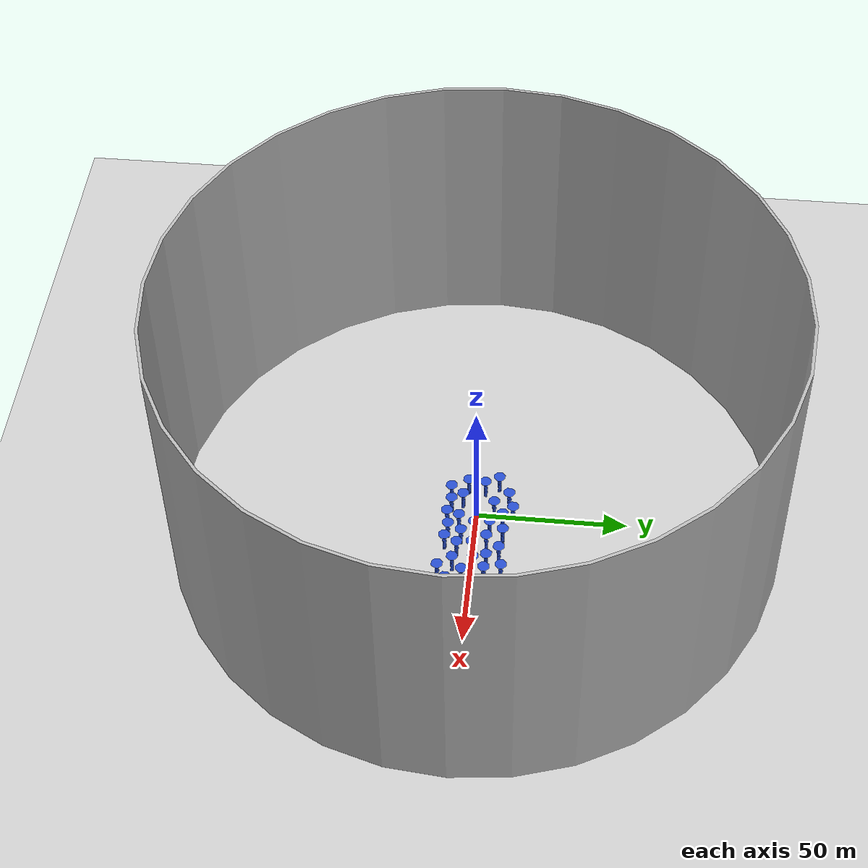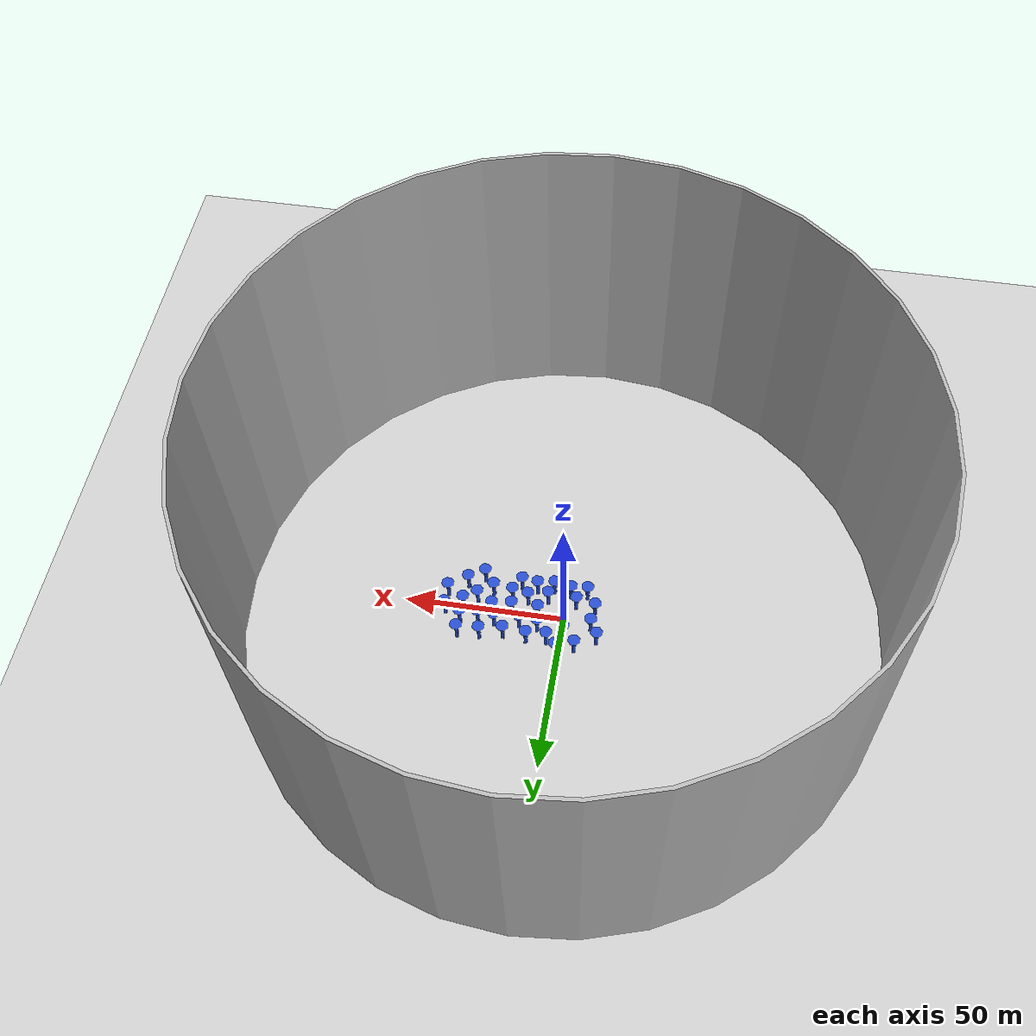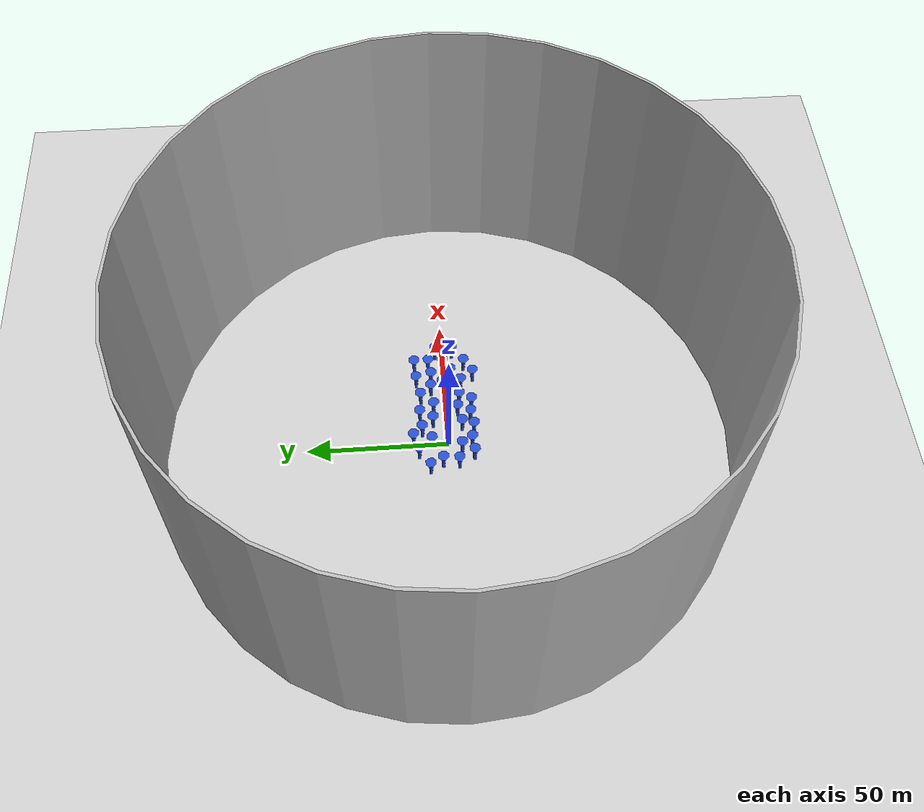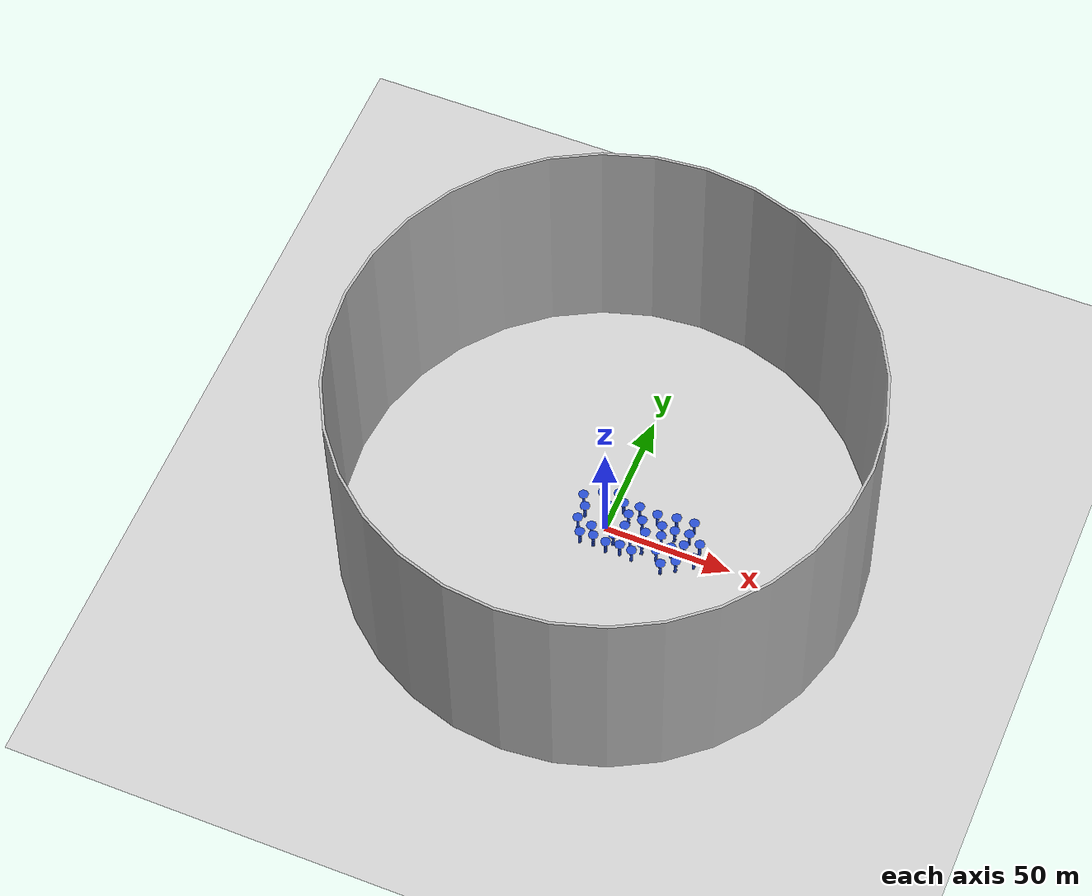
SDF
<sdf version="1.7">
 <world name="default">
  <light name="sun" type="directional">
   <cast_shadows>0</cast_shadows>
   <pose>0 0 10 0 -0 0</pose>
   <diffuse>0.8 0.8 0.8 1</diffuse>
   <specular>0.2 0.2 0.2 1</specular>
   <attenuation>
    <range>500</range>
    <constant>0.9</constant>
    <linear>0.01</linear>
    <quadratic>0.001</quadratic>
   </attenuation>
   <direction>-0.5 0.1 -0.9</direction>
   <spot><inner_angle>0</inner_angle><outer_angle>0</outer_angle><falloff>0</falloff></spot>
  </light>
  <model name="ground_plane">
   <static>1</static>
   <link name="link">
    <collision name="collision">
     <geometry><plane><normal>0 0 1</normal><size>200 200</size></plane></geometry>
     <surface>
      <contact><collide_bitmask>65535</collide_bitmask></contact>
      <friction><ode><mu>100</mu><mu2>50</mu2></ode></friction>
     </surface>
    </collision>
    <visual name="visual">
     <cast_shadows>0</cast_shadows>
     <geometry><plane><normal>0 0 1</normal><size>200 200</size></plane></geometry>
     <material>
      <script><uri>file://media/materials/scripts/gazebo.material</uri><name>Gazebo/Grey</name></script>
     </material>
    </visual>
   </link>
  </model>
  <gravity>0 0 -9.8</gravity>
  <magnetic_field>6e-06 2.3e-05 -4.2e-05</magnetic_field>
  <atmosphere type="adiabatic"/>
  <physics type="ode">
   <max_step_size>0.004</max_step_size>
   <real_time_factor>1</real_time_factor>
   <real_time_update_rate>250</real_time_update_rate>
  </physics>
  <scene><ambient>0.4 0.4 0.4 1</ambient><background>0.7 0.7 0.7 1</background><shadows>0</shadows></scene>
  <spherical_coordinates>
   <surface_model>EARTH_WGS84</surface_model>
   <latitude_deg>0</latitude_deg>
   <longitude_deg>0</longitude_deg>
   <elevation>0</elevation>
   <heading_deg>0</heading_deg>
  </spherical_coordinates>
  <model name="MyBox">
   <static>1</static>
   <link name="link">
    <visual name="visual"><geometry><mesh><uri>model://MyBox/meshes/MyBox.dae</uri></mesh></geometry></visual>
    <collision name="collision">
     <geometry><mesh><uri>model://MyBox/meshes/MyBox.dae</uri></mesh></geometry>
    </collision>
   </link>
  </model>
  <model name="MyColumn">
   <static>1</static>
   <pose>8.01961 -0.033499 0 0 -0 0</pose>
   <link name="link">
    <collision name="collision">
     <geometry><mesh><scale>1 1 1</scale><uri>model://MyColumn/meshes/Column.stl</uri></mesh></geometry>
    </collision>
    <visual name="visual">
     <geometry><mesh><scale>1 1 1</scale><uri>model://MyColumn/meshes/Column.stl</uri></mesh></geometry>
     <material>
      <script><name>Gazebo/Blue</name><uri>file://media/materials/scripts/gazebo.material</uri></script>
     </material>
    </visual>
   </link>
  </model>
  <model name="MyColumn_0">
   <static>1</static>
   <pose>4 9 0 0 -0 0</pose>
   <link name="link">
    <collision name="collision">
     <geometry><mesh><scale>1 1 1</scale><uri>model://MyColumn/meshes/Column.stl</uri></mesh></geometry>
    </collision>
    <visual name="visual">
     <geometry><mesh><scale>1 1 1</scale><uri>model://MyColumn/meshes/Column.stl</uri></mesh></geometry>
     <material>
      <script><name>Gazebo/Blue</name><uri>file://media/materials/scripts/gazebo.material</uri></script>
     </material>
    </visual>
   </link>
  </model>
  <model name="MyColumn_1">
   <static>1</static>
   <pose>-0.853209 5.86097 0 0 -0 0</pose>
   <link name="link">
    <collision name="collision">
     <geometry><mesh><scale>1 1 1</scale><uri>model://MyColumn/meshes/Column.stl</uri></mesh></geometry>
    </collision>
    <visual name="visual">
     <geometry><mesh><scale>1 1 1</scale><uri>model://MyColumn/meshes/Column.stl</uri></mesh></geometry>
     <material>
      <script><name>Gazebo/Blue</name><uri>file://media/materials/scripts/gazebo.material</uri></script>
     </material>
    </visual>
   </link>
  </model>
  <model name="MyColumn_2">
   <static>1</static>
   <pose>4.06656 -9.31077 0 0 -0 0</pose>
   <link name="link">
    <collision name="collision">
     <geometry><mesh><scale>1 1 1</scale><uri>model://MyColumn/meshes/Column.stl</uri></mesh></geometry>
    </collision>
    <visual name="visual">
     <geometry><mesh><scale>1 1 1</scale><uri>model://MyColumn/meshes/Column.stl</uri></mesh></geometry>
     <material>
      <script><name>Gazebo/Blue</name><uri>file://media/materials/scripts/gazebo.material</uri></script>
     </material>
    </visual>
   </link>
  </model>
  <model name="MyColumn_3">
   <static>1</static>
   <pose>-6.48738 -8.80628 0 0 -0 0</pose>
   <link name="link">
    <collision name="collision">
     <geometry><mesh><scale>1 1 1</scale><uri>model://MyColumn/meshes/Column.stl</uri></mesh></geometry>
    </collision>
    <visual name="visual">
     <geometry><mesh><scale>1 1 1</scale><uri>model://MyColumn/meshes/Column.stl</uri></mesh></geometry>
     <material>
      <script><name>Gazebo/Blue</name><uri>file://media/materials/scripts/gazebo.material</uri></script>
     </material>
    </visual>
   </link>
  </model>
  <model name="MyColumn_4">
   <static>1</static>
   <pose>-3.48945 -4.66783 0 0 -0 0</pose>
   <link name="link">
    <collision name="collision">
     <geometry><mesh><scale>1 1 1</scale><uri>model://MyColumn/meshes/Column.stl</uri></mesh></geometry>
    </collision>
    <visual name="visual">
     <geometry><mesh><scale>1 1 1</scale><uri>model://MyColumn/meshes/Column.stl</uri></mesh></geometry>
     <material>
      <script><name>Gazebo/Blue</name><uri>file://media/materials/scripts/gazebo.material</uri></script>
     </material>
    </visual>
   </link>
  </model>
  <model name="MyColumn_5">
   <static>1</static>
   <pose>-8.93667 2.32374 0 0 -0 0</pose>
   <link name="link">
    <collision name="collision">
     <geometry><mesh><scale>1 1 1</scale><uri>model://MyColumn/meshes/Column.stl</uri></mesh></geometry>
    </collision>
    <visual name="visual">
     <geometry><mesh><scale>1 1 1</scale><uri>model://MyColumn/meshes/Column.stl</uri></mesh></geometry>
     <material>
      <script><name>Gazebo/Blue</name><uri>file://media/materials/scripts/gazebo.material</uri></script>
     </material>
    </visual>
   </link>
  </model>
  <model name="MyColumn_6">
   <static>1</static>
   <pose>-4.89973 10.518 0 0 -0 0</pose>
   <link name="link">
    <collision name="collision">
     <geometry><mesh><scale>1 1 1</scale><uri>model://MyColumn/meshes/Column.stl</uri></mesh></geometry>
    </collision>
    <visual name="visual">
     <geometry><mesh><scale>1 1 1</scale><uri>model://MyColumn/meshes/Column.stl</uri></mesh></geometry>
     <material>
      <script><name>Gazebo/Blue</name><uri>file://media/materials/scripts/gazebo.material</uri></script>
     </material>
    </visual>
   </link>
  </model>
  <model name="MyColumn_7">
   <static>1</static>
   <pose>11.7072 -4.04622 0 0 -0 0</pose>
   <link name="link">
    <collision name="collision">
     <geometry><mesh><scale>1 1 1</scale><uri>model://MyColumn/meshes/Column.stl</uri></mesh></geometry>
    </collision>
    <visual name="visual">
     <geometry><mesh><scale>1 1 1</scale><uri>model://MyColumn/meshes/Column.stl</uri></mesh></geometry>
     <material>
      <script><name>Gazebo/Blue</name><uri>file://media/materials/scripts/gazebo.material</uri></script>
     </material>
    </visual>
   </link>
  </model>
  <model name="MyColumn_8">
   <static>1</static>
   <pose>7.47089 5.01537 0 0 -0 0</pose>
   <link name="link">
    <collision name="collision">
     <geometry><mesh><scale>1 1 1</scale><uri>model://MyColumn/meshes/Column.stl</uri></mesh></geometry>
    </collision>
    <visual name="visual">
     <geometry><mesh><scale>1 1 1</scale><uri>model://MyColumn/meshes/Column.stl</uri></mesh></geometry>
     <material>
      <script><name>Gazebo/Blue</name><uri>file://media/materials/scripts/gazebo.material</uri></script>
     </material>
    </visual>
   </link>
  </model>
  <model name="MyColumn_9">
   <static>1</static>
   <pose>5.49828 -5.27114 0 0 -0 0</pose>
   <link name="link">
    <collision name="collision">
     <geometry><mesh><scale>1 1 1</scale><uri>model://MyColumn/meshes/Column.stl</uri></mesh></geometry>
    </collision>
    <visual name="visual">
     <geometry><mesh><scale>1 1 1</scale><uri>model://MyColumn/meshes/Column.stl</uri></mesh></geometry>
     <material>
      <script><name>Gazebo/Blue</name><uri>file://media/materials/scripts/gazebo.material</uri></script>
     </material>
    </visual>
   </link>
  </model>
  <model name="MyColumn_10">
   <static>1</static>
   <pose>16.2455 -0.046176 0 0 -0 0</pose>
   <link name="link">
    <collision name="collision">
     <geometry><mesh><scale>1 1 1</scale><uri>model://MyColumn/meshes/Column.stl</uri></mesh></geometry>
    </collision>
    <visual name="visual">
     <geometry><mesh><scale>1 1 1</scale><uri>model://MyColumn/meshes/Column.stl</uri></mesh></geometry>
     <material>
      <script><name>Gazebo/Blue</name><uri>file://media/materials/scripts/gazebo.material</uri></script>
     </material>
    </visual>
   </link>
  </model>
  <model name="MyColumn_14">
   <static>1</static>
   <pose>16.7574 -5.00771 0 0 -0 0</pose>
   <link name="link">
    <collision name="collision">
     <geometry><mesh><scale>1 1 1</scale><uri>model://MyColumn/meshes/Column.stl</uri></mesh></geometry>
    </collision>
    <visual name="visual">
     <geometry><mesh><scale>1 1 1</scale><uri>model://MyColumn/meshes/Column.stl</uri></mesh></geometry>
     <material>
      <script><name>Gazebo/Blue</name><uri>file://media/materials/scripts/gazebo.material</uri></script>
     </material>
    </visual>
   </link>
  </model>
  <model name="MyColumn_21">
   <static>1</static>
   <pose>26.162 4.63926 0 0 -0 0</pose>
   <link name="link">
    <collision name="collision">
     <geometry><mesh><scale>1 1 1</scale><uri>model://MyColumn/meshes/Column.stl</uri></mesh></geometry>
    </collision>
    <visual name="visual">
     <geometry><mesh><scale>1 1 1</scale><uri>model://MyColumn/meshes/Column.stl</uri></mesh></geometry>
     <material>
      <script><name>Gazebo/Blue</name><uri>file://media/materials/scripts/gazebo.material</uri></script>
     </material>
    </visual>
   </link>
  </model>
  <model name="MyColumn_23">
   <static>1</static>
   <pose>17.5881 8.86535 0 0 -0 0</pose>
   <link name="link">
    <collision name="collision">
     <geometry><mesh><scale>1 1 1</scale><uri>model://MyColumn/meshes/Column.stl</uri></mesh></geometry>
    </collision>
    <visual name="visual">
     <geometry><mesh><scale>1 1 1</scale><uri>model://MyColumn/meshes/Column.stl</uri></mesh></geometry>
     <material>
      <script><name>Gazebo/Blue</name><uri>file://media/materials/scripts/gazebo.material</uri></script>
     </material>
    </visual>
   </link>
  </model>
  <model name="MyColumn_24">
   <static>1</static>
   <pose>10.271 9.54702 0 0 -0 0</pose>
   <link name="link">
    <collision name="collision">
     <geometry><mesh><scale>1 1 1</scale><uri>model://MyColumn/meshes/Column.stl</uri></mesh></geometry>
    </collision>
    <visual name="visual">
     <geometry><mesh><scale>1 1 1</scale><uri>model://MyColumn/meshes/Column.stl</uri></mesh></geometry>
     <material>
      <script><name>Gazebo/Blue</name><uri>file://media/materials/scripts/gazebo.material</uri></script>
     </material>
    </visual>
   </link>
  </model>
  <model name="MyColumn_25">
   <static>1</static>
   <pose>9.33895 -8.51335 0 0 -0 0</pose>
   <link name="link">
    <collision name="collision">
     <geometry><mesh><scale>1 1 1</scale><uri>model://MyColumn/meshes/Column.stl</uri></mesh></geometry>
    </collision>
    <visual name="visual">
     <geometry><mesh><scale>1 1 1</scale><uri>model://MyColumn/meshes/Column.stl</uri></mesh></geometry>
     <material>
      <script><name>Gazebo/Blue</name><uri>file://media/materials/scripts/gazebo.material</uri></script>
     </material>
    </visual>
   </link>
  </model>
  <model name="MyColumn_26">
   <static>1</static>
   <pose>14.336 -9.20322 0 0 -0 0</pose>
   <link name="link">
    <collision name="collision">
     <geometry><mesh><scale>1 1 1</scale><uri>model://MyColumn/meshes/Column.stl</uri></mesh></geometry>
    </collision>
    <visual name="visual">
     <geometry><mesh><scale>1 1 1</scale><uri>model://MyColumn/meshes/Column.stl</uri></mesh></geometry>
     <material>
      <script><name>Gazebo/Blue</name><uri>file://media/materials/scripts/gazebo.material</uri></script>
     </material>
    </visual>
   </link>
  </model>
  <model name="MyColumn_27">
   <static>1</static>
   <pose>-9.51534 -3.28078 0 0 -0 0</pose>
   <link name="link">
    <collision name="collision">
     <geometry><mesh><scale>1 1 1</scale><uri>model://MyColumn/meshes/Column.stl</uri></mesh></geometry>
    </collision>
    <visual name="visual">
     <geometry><mesh><scale>1 1 1</scale><uri>model://MyColumn/meshes/Column.stl</uri></mesh></geometry>
     <material>
      <script><name>Gazebo/Blue</name><uri>file://media/materials/scripts/gazebo.material</uri></script>
     </material>
    </visual>
   </link>
  </model>
  <model name="MyColumn_28">
   <static>1</static>
   <pose>-1.27696 -8.33726 0 0 -0 0</pose>
   <link name="link">
    <collision name="collision">
     <geometry><mesh><scale>1 1 1</scale><uri>model://MyColumn/meshes/Column.stl</uri></mesh></geometry>
    </collision>
    <visual name="visual">
     <geometry><mesh><scale>1 1 1</scale><uri>model://MyColumn/meshes/Column.stl</uri></mesh></geometry>
     <material>
      <script><name>Gazebo/Blue</name><uri>file://media/materials/scripts/gazebo.material</uri></script>
     </material>
    </visual>
   </link>
  </model>
  <model name="MyColumn_29">
   <static>1</static>
   <pose>0.795707 12.2496 0 0 -0 0</pose>
   <link name="link">
    <collision name="collision">
     <geometry><mesh><scale>1 1 1</scale><uri>model://MyColumn/meshes/Column.stl</uri></mesh></geometry>
    </collision>
    <visual name="visual">
     <geometry><mesh><scale>1 1 1</scale><uri>model://MyColumn/meshes/Column.stl</uri></mesh></geometry>
     <material>
      <script><name>Gazebo/Blue</name><uri>file://media/materials/scripts/gazebo.material</uri></script>
     </material>
    </visual>
   </link>
  </model>
  <model name="MyColumn_30">
   <static>1</static>
   <pose>-11.3335 6.81817 0 0 -0 0</pose>
   <link name="link">
    <collision name="collision">
     <geometry><mesh><scale>1 1 1</scale><uri>model://MyColumn/meshes/Column.stl</uri></mesh></geometry>
    </collision>
    <visual name="visual">
     <geometry><mesh><scale>1 1 1</scale><uri>model://MyColumn/meshes/Column.stl</uri></mesh></geometry>
     <material>
      <script><name>Gazebo/Blue</name><uri>file://media/materials/scripts/gazebo.material</uri></script>
     </material>
    </visual>
   </link>
  </model>
  <model name="MyColumn_11">
   <static>1</static>
   <pose>13.2178 4.42719 0 0 -0 0</pose>
   <link name="link">
    <collision name="collision">
     <geometry><mesh><scale>1 1 1</scale><uri>model://MyColumn/meshes/Column.stl</uri></mesh></geometry>
    </collision>
    <visual name="visual">
     <geometry><mesh><scale>1 1 1</scale><uri>model://MyColumn/meshes/Column.stl</uri></mesh></geometry>
     <material>
      <script><name>Gazebo/Blue</name><uri>file://media/materials/scripts/gazebo.material</uri></script>
     </material>
    </visual>
   </link>
  </model>
  <model name="MyColumn_12">
   <static>1</static>
   <pose>22.2996 0.835611 0 0 -0 0</pose>
   <link name="link">
    <collision name="collision">
     <geometry><mesh><scale>1 1 1</scale><uri>model://MyColumn/meshes/Column.stl</uri></mesh></geometry>
    </collision>
    <visual name="visual">
     <geometry><mesh><scale>1 1 1</scale><uri>model://MyColumn/meshes/Column.stl</uri></mesh></geometry>
     <material>
      <script><name>Gazebo/Blue</name><uri>file://media/materials/scripts/gazebo.material</uri></script>
     </material>
    </visual>
   </link>
  </model>
  <model name="MyColumn_13">
   <static>1</static>
   <pose>27.4625 -2.46039 0 0 -0 0</pose>
   <link name="link">
    <collision name="collision">
     <geometry><mesh><scale>1 1 1</scale><uri>model://MyColumn/meshes/Column.stl</uri></mesh></geometry>
    </collision>
    <visual name="visual">
     <geometry><mesh><scale>1 1 1</scale><uri>model://MyColumn/meshes/Column.stl</uri></mesh></geometry>
     <material>
      <script><name>Gazebo/Blue</name><uri>file://media/materials/scripts/gazebo.material</uri></script>
     </material>
    </visual>
   </link>
  </model>
  <model name="MyColumn_15">
   <static>1</static>
   <pose>22.8771 -5.86718 0 0 -0 0</pose>
   <link name="link">
    <collision name="collision">
     <geometry><mesh><scale>1 1 1</scale><uri>model://MyColumn/meshes/Column.stl</uri></mesh></geometry>
    </collision>
    <visual name="visual">
     <geometry><mesh><scale>1 1 1</scale><uri>model://MyColumn/meshes/Column.stl</uri></mesh></geometry>
     <material>
      <script><name>Gazebo/Blue</name><uri>file://media/materials/scripts/gazebo.material</uri></script>
     </material>
    </visual>
   </link>
  </model>
  <model name="MyColumn_16">
   <static>1</static>
   <pose>20.966 4.9827 0 0 -0 0</pose>
   <link name="link">
    <collision name="collision">
     <geometry><mesh><scale>1 1 1</scale><uri>model://MyColumn/meshes/Column.stl</uri></mesh></geometry>
    </collision>
    <visual name="visual">
     <geometry><mesh><scale>1 1 1</scale><uri>model://MyColumn/meshes/Column.stl</uri></mesh></geometry>
     <material>
      <script><name>Gazebo/Blue</name><uri>file://media/materials/scripts/gazebo.material</uri></script>
     </material>
    </visual>
   </link>
  </model>
  <model name="MyColumn_17">
   <static>1</static>
   <pose>31.5218 0.186439 0 0 -0 0</pose>
   <link name="link">
    <collision name="collision">
     <geometry><mesh><scale>1 1 1</scale><uri>model://MyColumn/meshes/Column.stl</uri></mesh></geometry>
    </collision>
    <visual name="visual">
     <geometry><mesh><scale>1 1 1</scale><uri>model://MyColumn/meshes/Column.stl</uri></mesh></geometry>
     <material>
      <script><name>Gazebo/Blue</name><uri>file://media/materials/scripts/gazebo.material</uri></script>
     </material>
    </visual>
   </link>
  </model>
  <model name="MyColumn_18">
   <static>1</static>
   <pose>31.7374 5.36179 0 0 -0 0</pose>
   <link name="link">
    <collision name="collision">
     <geometry><mesh><scale>1 1 1</scale><uri>model://MyColumn/meshes/Column.stl</uri></mesh></geometry>
    </collision>
    <visual name="visual">
     <geometry><mesh><scale>1 1 1</scale><uri>model://MyColumn/meshes/Column.stl</uri></mesh></geometry>
     <material>
      <script><name>Gazebo/Blue</name><uri>file://media/materials/scripts/gazebo.material</uri></script>
     </material>
    </visual>
   </link>
  </model>
  <model name="MyColumn_19">
   <static>1</static>
   <pose>24.8111 10.1186 0 0 -0 0</pose>
   <link name="link">
    <collision name="collision">
     <geometry><mesh><scale>1 1 1</scale><uri>model://MyColumn/meshes/Column.stl</uri></mesh></geometry>
    </collision>
    <visual name="visual">
     <geometry><mesh><scale>1 1 1</scale><uri>model://MyColumn/meshes/Column.stl</uri></mesh></geometry>
     <material>
      <script><name>Gazebo/Blue</name><uri>file://media/materials/scripts/gazebo.material</uri></script>
     </material>
    </visual>
   </link>
  </model>
  <model name="MyColumn_20">
   <static>1</static>
   <pose>31.2267 -7.48694 0 0 -0 0</pose>
   <link name="link">
    <collision name="collision">
     <geometry><mesh><scale>1 1 1</scale><uri>model://MyColumn/meshes/Column.stl</uri></mesh></geometry>
    </collision>
    <visual name="visual">
     <geometry><mesh><scale>1 1 1</scale><uri>model://MyColumn/meshes/Column.stl</uri></mesh></geometry>
     <material>
      <script><name>Gazebo/Blue</name><uri>file://media/materials/scripts/gazebo.material</uri></script>
     </material>
    </visual>
   </link>
  </model>
  <model name="MyColumn_22">
   <static>1</static>
   <pose>36.9971 -3.62243 0 0 -0 0</pose>
   <link name="link">
    <collision name="collision">
     <geometry><mesh><scale>1 1 1</scale><uri>model://MyColumn/meshes/Column.stl</uri></mesh></geometry>
    </collision>
    <visual name="visual">
     <geometry><mesh><scale>1 1 1</scale><uri>model://MyColumn/meshes/Column.stl</uri></mesh></geometry>
     <material>
      <script><name>Gazebo/Blue</name><uri>file://media/materials/scripts/gazebo.material</uri></script>
     </material>
    </visual>
   </link>
  </model>
  <model name="MyColumn_31">
   <static>1</static>
   <pose>36.9385 2.64746 0 0 -0 0</pose>
   <link name="link">
    <collision name="collision">
     <geometry><mesh><scale>1 1 1</scale><uri>model://MyColumn/meshes/Column.stl</uri></mesh></geometry>
    </collision>
    <visual name="visual">
     <geometry><mesh><scale>1 1 1</scale><uri>model://MyColumn/meshes/Column.stl</uri></mesh></geometry>
     <material>
      <script><name>Gazebo/Blue</name><uri>file://media/materials/scripts/gazebo.material</uri></script>
     </material>
    </visual>
   </link>
  </model>
  <model name="MyColumn_32">
   <static>1</static>
   <pose>31.7606 10.4827 0 0 -0 0</pose>
   <link name="link">
    <collision name="collision">
     <geometry><mesh><scale>1 1 1</scale><uri>model://MyColumn/meshes/Column.stl</uri></mesh></geometry>
    </collision>
    <visual name="visual">
     <geometry><mesh><scale>1 1 1</scale><uri>model://MyColumn/meshes/Column.stl</uri></mesh></geometry>
     <material>
      <script><name>Gazebo/Blue</name><uri>file://media/materials/scripts/gazebo.material</uri></script>
     </material>
    </visual>
   </link>
  </model>
  <model name="MyColumn_33">
   <static>1</static>
   <pose>26.3124 -10.4231 0 0 -0 0</pose>
   <link name="link">
    <collision name="collision">
     <geometry><mesh><scale>1 1 1</scale><uri>model://MyColumn/meshes/Column.stl</uri></mesh></geometry>
    </collision>
    <visual name="visual">
     <geometry><mesh><scale>1 1 1</scale><uri>model://MyColumn/meshes/Column.stl</uri></mesh></geometry>
     <material>
      <script><name>Gazebo/Blue</name><uri>file://media/materials/scripts/gazebo.material</uri></script>
     </material>
    </visual>
   </link>
  </model>
 </world>
</sdf>
